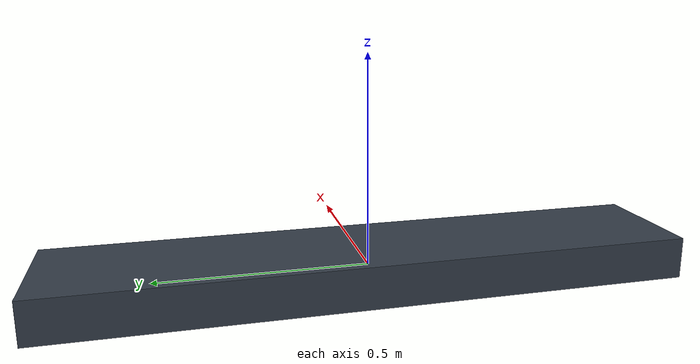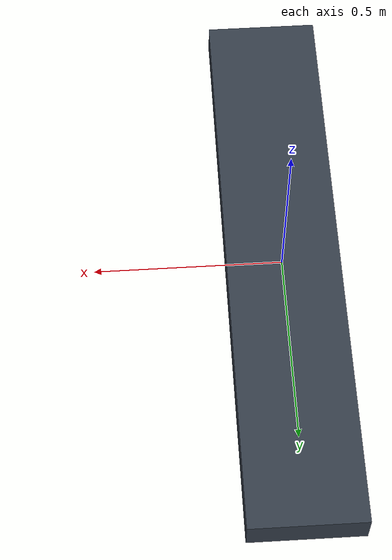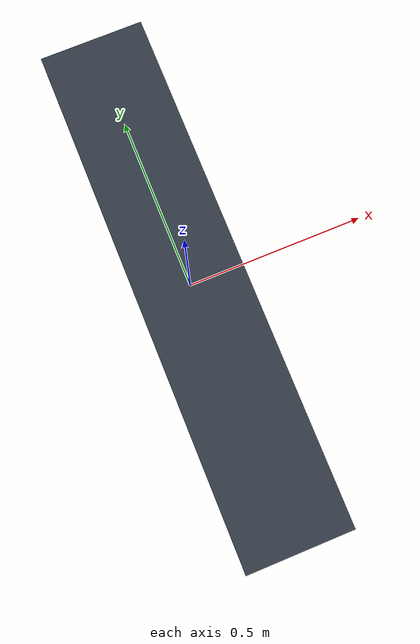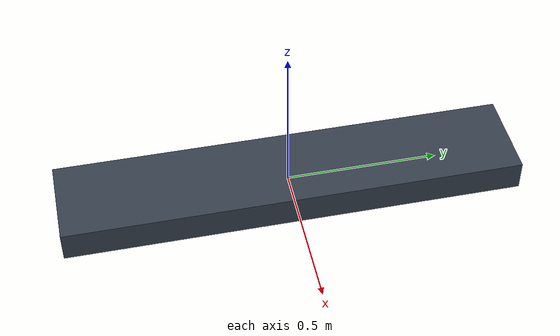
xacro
<?xml version="1.0"?>
<robot name="m2wr" xmlns:xacro="http://www.ros.org/wiki/xacro">

  <xacro:include filename="$(find transport_gazebo)/urdf/materials.xacro"/>
  <xacro:include filename="$(find transport_gazebo)/urdf/box.gazebo.xacro"/>
  <xacro:include filename="$(find transport_gazebo)/urdf/macro.xacro"/>

  <link name="link_chassis">
    <!-- pose and inertial -->
    <pose>0 0 0.1 0 0 0</pose>
    <inertial>
      <mass value="0.01"/>
      <origin rpy="0 0 0" xyz="0 0 0.1"/>
      <inertia ixx="0.0395416666667" ixy="0" ixz="0" iyy="0.106208333333" iyz="0" izz="0.106208333333"/>
    </inertial>
    <!-- body -->
    <collision name="collision_chassis">
      <geometry>
        <box size="0.3 1.5 0.1"/>
      </geometry>
    </collision>
    <visual>
      <origin rpy="0 0 0" xyz="0 0 0"/>
      <geometry>
        <box size="0.3 1.5 0.1"/>
      </geometry>
      <material name="blue"/>
    </visual>
  </link>

  <xacro:link_wheel name="link_right_wheel" />
  <xacro:joint_wheel name="joint_right_wheel" child="link_right_wheel" origin_xyz="-0.05 0.15 0" />

  <xacro:link_wheel name="link_left_wheel" />
  <xacro:joint_wheel name="joint_left_wheel" child="link_left_wheel" origin_xyz="-0.05 -0.15 0" />

</robot>

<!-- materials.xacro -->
<robot xmlns:xacro="http://www.ros.org/wiki/xacro">
  <material name="black">
    <color rgba="0.0 0.0 0.0 1.0"/>
  </material>
  <material name="blue">
    <color rgba="0.203125 0.23828125 0.28515625 1.0"/>
  </material>
  <material name="green">
    <color rgba="0.0 0.8 0.0 1.0"/>
  </material>
  <material name="grey">
    <color rgba="0.2 0.2 0.2 1.0"/>
  </material>
  <material name="orange">
    <color rgba="1.0 0.423529411765 0.0392156862745 1.0"/>
  </material>
  <material name="brown">
    <color rgba="0.870588235294 0.811764705882 0.764705882353 1.0"/>
  </material>
  <material name="red">
    <color rgba="0.80078125 0.12890625 0.1328125 1.0"/>
  </material>
  <material name="white">
    <color rgba="1.0 1.0 1.0 1.0"/>
  </material>
 </robot>

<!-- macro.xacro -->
<robot xmlns:xacro="http://www.ros.org/wiki/xacro">
    <xacro:macro name="link_wheel" params="name">
        <link name="${name}">
            <inertial>
              <mass value="0.0001"/>
              <origin rpy="0 1.5707 1.5707" xyz="0 0 0"/>
              <inertia ixx="0.000526666666667" ixy="0" ixz="0" iyy="0.000526666666667" iyz="0" izz="0.001"/>
            </inertial>
            <collision name="${name}_collision">
              <origin rpy="0 1.5707 1.5707" xyz="0 0 0"/>
              <geometry>
                <cylinder length="0.001" radius="0.001"/>
              </geometry>
            </collision>
            <visual name="${name}_visual">
              <origin rpy="0 1.5707 1.5707" xyz="0 0 0"/>
              <geometry>
                <cylinder length="0.001" radius="0.001"/>
              </geometry>
            </visual>
        </link>
    </xacro:macro>

    <xacro:macro name="joint_wheel" params="name child origin_xyz">
        <joint name="${name}" type="continuous">
            <origin rpy="0 0 0" xyz="${origin_xyz}"/>
            <child link="${child}"/>
            <parent link="link_chassis"/>
            <axis rpy="0 0 0" xyz="0 1 0"/>
            <limit effort="10000" velocity="1000"/>
            <joint_properties damping="1.0" friction="1.0"/>
        </joint>
    </xacro:macro>

    <xacro:macro name="cylinder_inertia" params="mass r l">
        <inertia    ixx="${mass*(3*r*r+l*l)/12}" ixy = "0" ixz = "0"
                    iyy="${mass*(3*r*r+l*l)/12}" iyz = "0"
                    izz="${mass*(r*r)/2}" />
    </xacro:macro>
</robot>
